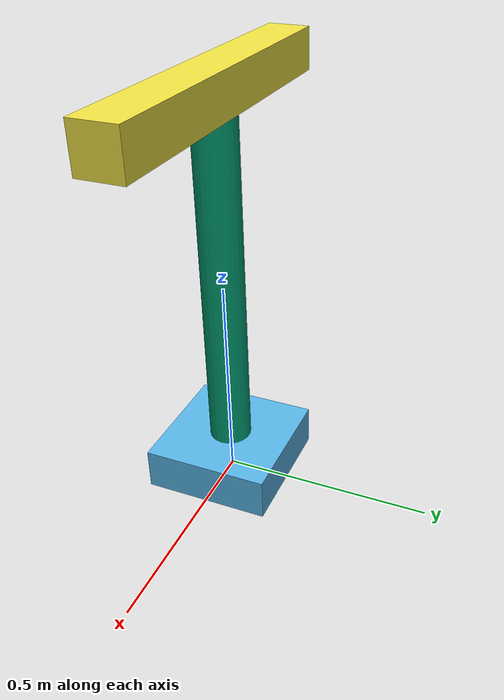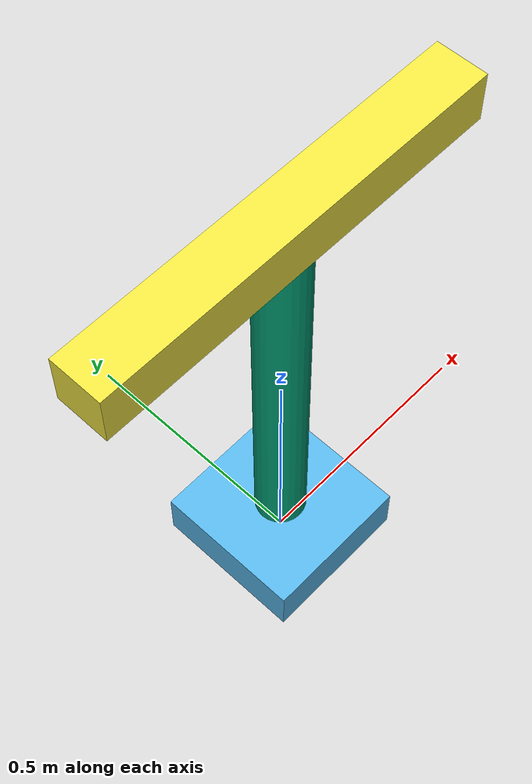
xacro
<?xml version="1.0"?>
<robot name="my_robot" xmlns:xacro="http://www.ros.org/wiki/xacro">

  <!-- Parameters -->
  <xacro:property name="w0" value="0.3" />
  <xacro:property name="l0" value="0.1" />
  <xacro:property name="l1" value="0.8" />
  <xacro:property name="r1" value="0.05" />
  <xacro:property name="w2" value="0.8" />
  <xacro:property name="l2" value="0.1" />
  <xacro:property name="ro" value="1" />

  <!-- Macro -->
  <xacro:macro name="inert" params="m w h">
    <mass value="${m}" />
    <inertia ixx="${m / 12.0 * (w*w + h*h)}" ixy="0" ixz="0"
             iyy="${m / 12.0 * (w*w + h*h)}" iyz="0"
             izz="${m / 12.0 * (w*w + h*h)}" />
  </xacro:macro>

  <!-- Base -->

  <link name="world" />

  <link name="base_link">
    <visual>
      <geometry>
        <box size="${w0} ${w0} ${l0}" />
      </geometry>
      <origin xyz="0 0 ${0.5*l0}" />
    </visual>
    <collision>
      <geometry>
        <box size="${w0} ${w0} ${l0}" />
      </geometry>
      <origin xyz="0 0 ${0.5*l0}" />
    </collision>
    <inertial>
      <origin xyz="0 0 ${0.5*l0}" />
      <xacro:inert m="${ro*w0*w0*l0}" w="${w0}" h="${l0}" />
    </inertial>
  </link>

  <joint name="world_to_base" type="fixed">
    <parent link="world" />
    <child  link="base_link" />
  </joint>

  <!-- Joint 1 -->

  <link name="link_1">
    <visual>
      <geometry>
        <cylinder length="${l1}" radius="${r1}" />
      </geometry>
      <origin xyz="0 0 ${0.5*l1}" />
    </visual>
    <collision>
      <geometry>
        <cylinder length="${l1}" radius="${r1}" />
      </geometry>
      <origin xyz="0 0 ${0.5*l1}" />
    </collision>
    <inertial>
      <origin xyz="0 0 ${0.5*l1}" />
      <xacro:inert m="${3.14*r1*r1*l1*ro}" w="${2*r1}" h="${l1}" />
    </inertial>
  </link>

  <joint name="base_to_link_1" type="revolute">
    <parent link="base_link" />
    <child  link="link_1" />
    <origin xyz="0 0 ${l0}" />
    <axis xyz="0 0 1" />
    <limit effort="1000.0" lower="-1.57" upper="1.57" velocity="0.5" />
  </joint>

  <!-- Joint 2 -->

  <link name="link_2">
    <visual>
      <geometry>
        <box size="${w2} ${l2} ${l2}" />
      </geometry>
    </visual>
    <collision>
      <geometry>
        <box size="${w2} ${l2} ${l2}" />
      </geometry>
    </collision>
    <inertial>
      <origin xyz="0 0 0" />
      <xacro:inert m="${w2*l2*l2}" w="${l2}" h="${w2}" />
    </inertial>
  </link>

  <joint name="link_1_to_link_2" type="prismatic">
    <parent link="link_1" />
    <child  link="link_2" />
    <origin xyz="0 0 ${l1+0.5*l2}" />
    <axis xyz="1 0 0" />
    <limit effort="1000.0" lower="-0.4" upper="0.4" velocity="0.5" />
  </joint>

</robot>
